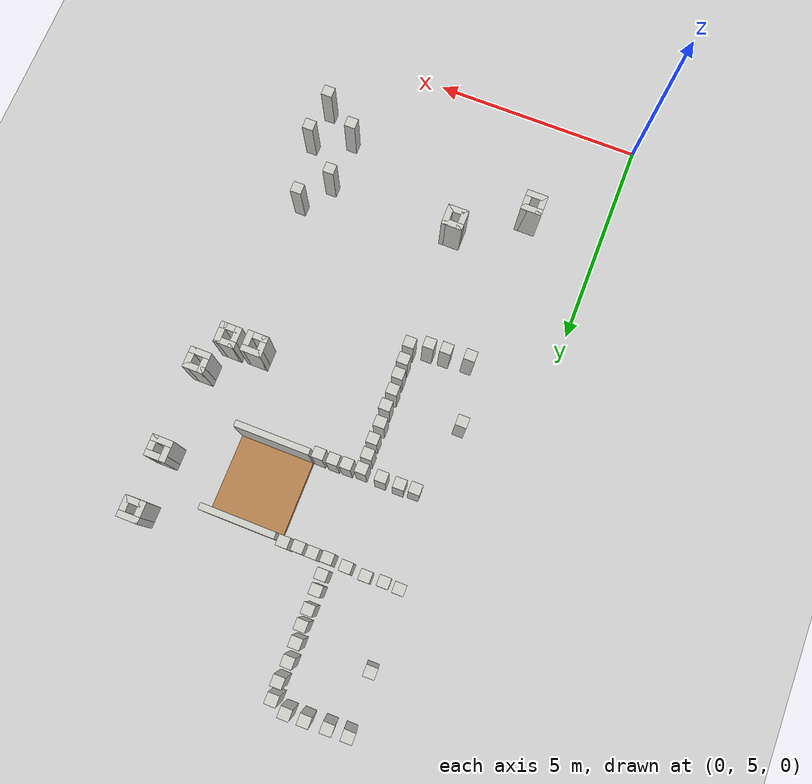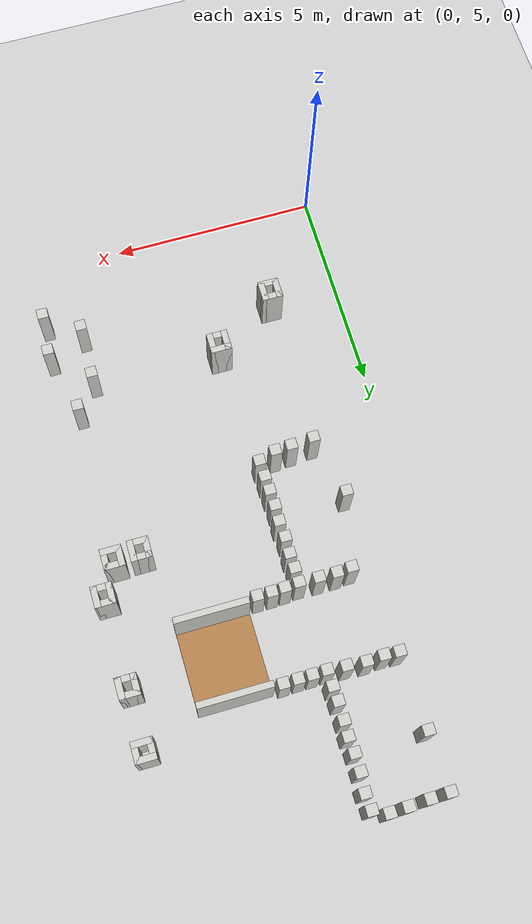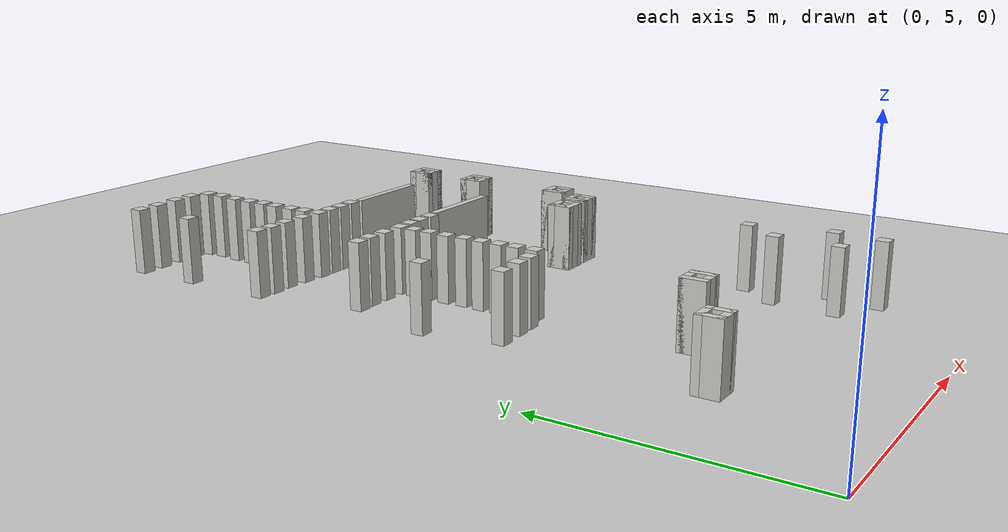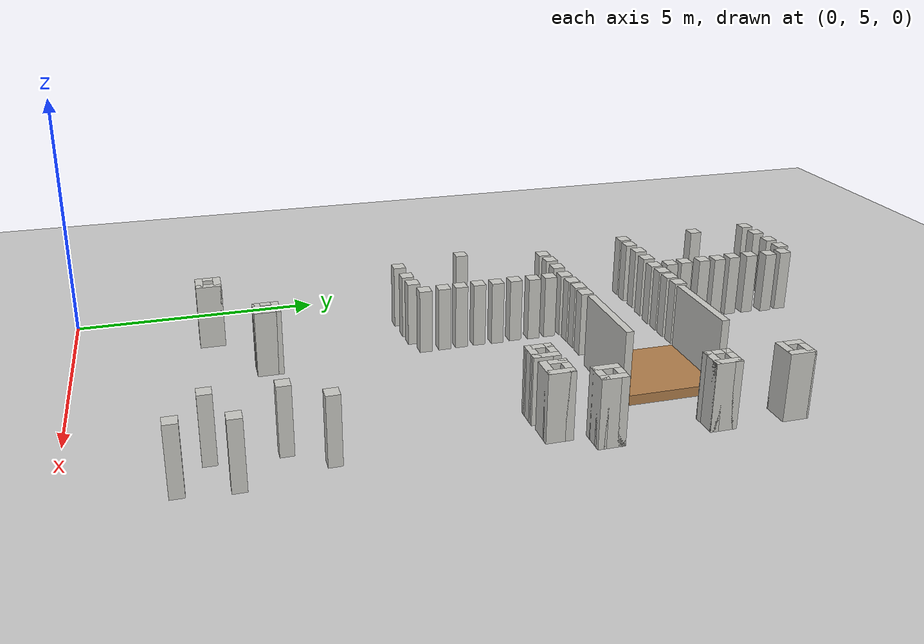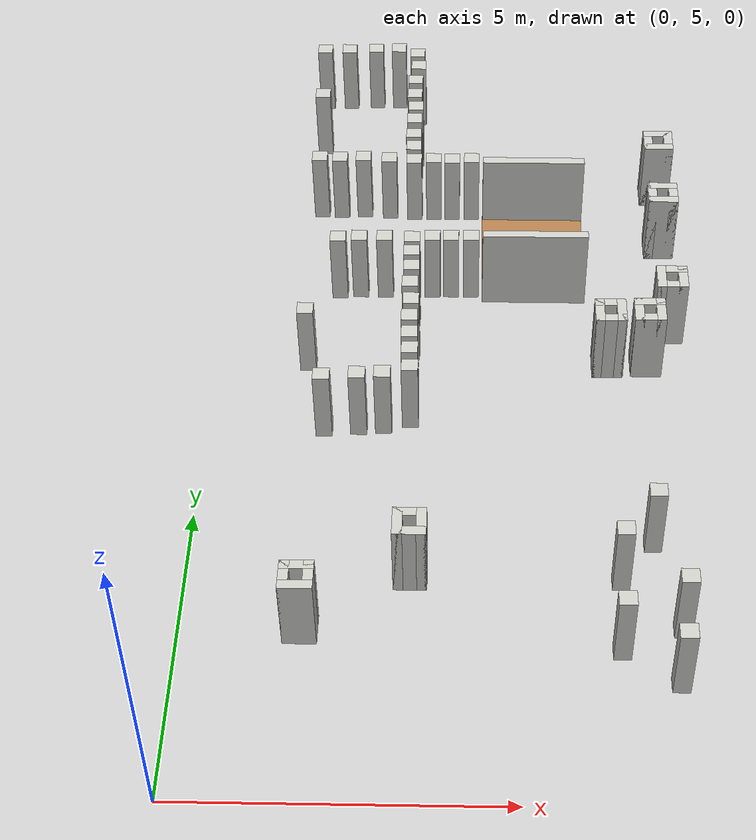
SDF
<sdf version="1.6">
 <world name="default">
  <model name="ground_plane">
   <static>1</static>
   <link name="link">
    <collision name="collision">
     <geometry><plane><normal>0 0 1</normal><size>100 100</size></plane></geometry>
     <surface><friction><ode><mu>100</mu><mu2>50</mu2></ode></friction></surface>
    </collision>
    <visual name="visual">
     <cast_shadows>0</cast_shadows>
     <geometry><plane><normal>0 0 1</normal><size>100 100</size></plane></geometry>
     <material>
      <script><uri>file://media/materials/scripts/gazebo.material</uri><name>Gazebo/Grey</name></script>
     </material>
    </visual>
   </link>
  </model>
  <model name="nerve_straight_clone_clone_0">
   <pose>5.28572 15.8348 0 0 0 -1.5708</pose>
   <link name="Wall_0">
    <collision name="Wall_0_Collision">
     <geometry><box><size>1.76 1.75 0.2</size></box></geometry>
     <pose>0 0 0.1 0 -0 0</pose>
    </collision>
    <visual name="Wall_0_Visual">
     <pose>0 0 0.1 0 -0 0</pose>
     <geometry><box><size>1.76 1.75 0.2</size></box></geometry>
     <material>
      <script><uri>file://media/materials/scripts/gazebo.material</uri><name>Gazebo/Wood</name></script>
      <ambient>1 0.764706 0.305882 1</ambient>
     </material>
    </visual>
    <pose>0.005 -0.002 0 0 -0 3.14159</pose>
   </link>
   <link name="Wall_2">
    <collision name="Wall_2_Collision">
     <geometry><box><size>1.75 0.15 1.5</size></box></geometry>
     <pose>0 0 0.75 0 -0 0</pose>
    </collision>
    <visual name="Wall_2_Visual">
     <pose>0 0 0.75 0 -0 0</pose>
     <geometry><box><size>1.75 0.15 1.5</size></box></geometry>
     <material>
      <script><uri>file://media/materials/scripts/gazebo.material</uri><name>Gazebo/CeilingTiled</name></script>
      <ambient>1 0.764706 0.305882 1</ambient>
     </material>
    </visual>
    <pose>-0.955 0.002 0 0 0 -1.5708</pose>
   </link>
   <link name="Wall_4">
    <collision name="Wall_4_Collision">
     <geometry><box><size>1.75 0.15 1.5</size></box></geometry>
     <pose>0 0 0.75 0 -0 0</pose>
    </collision>
    <visual name="Wall_4_Visual">
     <pose>0 0 0.75 0 -0 0</pose>
     <geometry><box><size>1.75 0.15 1.5</size></box></geometry>
     <material>
      <script><uri>file://media/materials/scripts/gazebo.material</uri><name>Gazebo/CeilingTiled</name></script>
      <ambient>1 0.764706 0.305882 1</ambient>
     </material>
    </visual>
    <pose>0.955 0.002 0 0 0 -1.5708</pose>
   </link>
   <static>1</static>
  </model>
  <model name="nerve_obs_squarepillar_large_clone_1">
   <pose>1.81336 7.73315 0.2 0 -0 0</pose>
   <link name="Wall_31">
    <collision name="Wall_31_Collision">
     <geometry><box><size>0.5 0.15 1.3</size></box></geometry>
     <pose>0 0 0.65 0 -0 0</pose>
    </collision>
    <visual name="Wall_31_Visual">
     <pose>0 0 0.65 0 -0 0</pose>
     <geometry><box><size>0.5 0.15 1.3</size></box></geometry>
     <material>
      <script><uri>file://media/materials/scripts/gazebo.material</uri><name>Gazebo/CeilingTiled</name></script>
      <ambient>1 0.764706 0.305882 1</ambient>
     </material>
    </visual>
    <pose>-0.175 0 0 0 0 -1.5708</pose>
   </link>
   <link name="Wall_32">
    <collision name="Wall_32_Collision">
     <geometry><box><size>0.5 0.15 1.3</size></box></geometry>
     <pose>0 0 0.65 0 -0 0</pose>
    </collision>
    <visual name="Wall_32_Visual">
     <pose>0 0 0.65 0 -0 0</pose>
     <geometry><box><size>0.5 0.15 1.3</size></box></geometry>
     <material>
      <script><uri>file://media/materials/scripts/gazebo.material</uri><name>Gazebo/CeilingTiled</name></script>
      <ambient>1 0.764706 0.305882 1</ambient>
     </material>
    </visual>
    <pose>0 -0.175 0 0 -0 0</pose>
   </link>
   <link name="Wall_33">
    <collision name="Wall_33_Collision">
     <geometry><box><size>0.5 0.15 1.3</size></box></geometry>
     <pose>0 0 0.65 0 -0 0</pose>
    </collision>
    <visual name="Wall_33_Visual">
     <pose>0 0 0.65 0 -0 0</pose>
     <geometry><box><size>0.5 0.15 1.3</size></box></geometry>
     <material>
      <script><uri>file://media/materials/scripts/gazebo.material</uri><name>Gazebo/CeilingTiled</name></script>
      <ambient>1 0.764706 0.305882 1</ambient>
     </material>
    </visual>
    <pose>0.175 0 0 0 -0 1.5708</pose>
   </link>
   <link name="Wall_34">
    <collision name="Wall_34_Collision">
     <geometry><box><size>0.5 0.15 1.3</size></box></geometry>
     <pose>0 0 0.65 0 -0 0</pose>
    </collision>
    <visual name="Wall_34_Visual">
     <pose>0 0 0.65 0 -0 0</pose>
     <geometry><box><size>0.5 0.15 1.3</size></box></geometry>
     <material>
      <script><uri>file://media/materials/scripts/gazebo.material</uri><name>Gazebo/CeilingTiled</name></script>
      <ambient>1 0.764706 0.305882 1</ambient>
     </material>
    </visual>
    <pose>0 0.175 0 0 -0 3.14159</pose>
   </link>
   <static>1</static>
  </model>
  <model name="nerve_obs_squarepillar_large_clone_8">
   <pose>3.37105 8.71891 0.2 0 -0 0</pose>
   <link name="Wall_31">
    <collision name="Wall_31_Collision">
     <geometry><box><size>0.5 0.15 1.3</size></box></geometry>
     <pose>0 0 0.65 0 -0 0</pose>
    </collision>
    <visual name="Wall_31_Visual">
     <pose>0 0 0.65 0 -0 0</pose>
     <geometry><box><size>0.5 0.15 1.3</size></box></geometry>
     <material>
      <script><uri>file://media/materials/scripts/gazebo.material</uri><name>Gazebo/CeilingTiled</name></script>
      <ambient>1 0.764706 0.305882 1</ambient>
     </material>
    </visual>
    <pose>-0.175 0 0 0 0 -1.5708</pose>
   </link>
   <link name="Wall_32">
    <collision name="Wall_32_Collision">
     <geometry><box><size>0.5 0.15 1.3</size></box></geometry>
     <pose>0 0 0.65 0 -0 0</pose>
    </collision>
    <visual name="Wall_32_Visual">
     <pose>0 0 0.65 0 -0 0</pose>
     <geometry><box><size>0.5 0.15 1.3</size></box></geometry>
     <material>
      <script><uri>file://media/materials/scripts/gazebo.material</uri><name>Gazebo/CeilingTiled</name></script>
      <ambient>1 0.764706 0.305882 1</ambient>
     </material>
    </visual>
    <pose>0 -0.175 0 0 -0 0</pose>
   </link>
   <link name="Wall_33">
    <collision name="Wall_33_Collision">
     <geometry><box><size>0.5 0.15 1.3</size></box></geometry>
     <pose>0 0 0.65 0 -0 0</pose>
    </collision>
    <visual name="Wall_33_Visual">
     <pose>0 0 0.65 0 -0 0</pose>
     <geometry><box><size>0.5 0.15 1.3</size></box></geometry>
     <material>
      <script><uri>file://media/materials/scripts/gazebo.material</uri><name>Gazebo/CeilingTiled</name></script>
      <ambient>1 0.764706 0.305882 1</ambient>
     </material>
    </visual>
    <pose>0.175 0 0 0 -0 1.5708</pose>
   </link>
   <link name="Wall_34">
    <collision name="Wall_34_Collision">
     <geometry><box><size>0.5 0.15 1.3</size></box></geometry>
     <pose>0 0 0.65 0 -0 0</pose>
    </collision>
    <visual name="Wall_34_Visual">
     <pose>0 0 0.65 0 -0 0</pose>
     <geometry><box><size>0.5 0.15 1.3</size></box></geometry>
     <material>
      <script><uri>file://media/materials/scripts/gazebo.material</uri><name>Gazebo/CeilingTiled</name></script>
      <ambient>1 0.764706 0.305882 1</ambient>
     </material>
    </visual>
    <pose>0 0.175 0 0 -0 3.14159</pose>
   </link>
   <static>1</static>
  </model>
  <model name="nerve_obs_squarepillar_small_clone_29">
   <pose>6.47345 8.64189 0.2 0 -0 0</pose>
   <link name="Wall_40">
    <collision name="Wall_40_Collision">
     <geometry><box><size>0.26 0.25 1.3</size></box></geometry>
     <pose>0 0 0.65 0 -0 0</pose>
    </collision>
    <visual name="Wall_40_Visual">
     <pose>0 0 0.65 0 -0 0</pose>
     <geometry><box><size>0.26 0.25 1.3</size></box></geometry>
     <material>
      <script><uri>file://media/materials/scripts/gazebo.material</uri><name>Gazebo/CeilingTiled</name></script>
      <ambient>1 0.764706 0.305882 1</ambient>
     </material>
    </visual>
   </link>
   <static>1</static>
  </model>
  <model name="nerve_obs_squarepillar_small_clone_30">
   <pose>6.43463 7.40107 0.2 0 -0 0</pose>
   <link name="Wall_40">
    <collision name="Wall_40_Collision">
     <geometry><box><size>0.26 0.25 1.3</size></box></geometry>
     <pose>0 0 0.65 0 -0 0</pose>
    </collision>
    <visual name="Wall_40_Visual">
     <pose>0 0 0.65 0 -0 0</pose>
     <geometry><box><size>0.26 0.25 1.3</size></box></geometry>
     <material>
      <script><uri>file://media/materials/scripts/gazebo.material</uri><name>Gazebo/CeilingTiled</name></script>
      <ambient>1 0.764706 0.305882 1</ambient>
     </material>
    </visual>
   </link>
   <static>1</static>
  </model>
  <model name="nerve_obs_squarepillar_small_clone_32">
   <pose>7.32725 7.7999 0.2 0 -0 0</pose>
   <link name="Wall_40">
    <collision name="Wall_40_Collision">
     <geometry><box><size>0.26 0.25 1.3</size></box></geometry>
     <pose>0 0 0.65 0 -0 0</pose>
    </collision>
    <visual name="Wall_40_Visual">
     <pose>0 0 0.65 0 -0 0</pose>
     <geometry><box><size>0.26 0.25 1.3</size></box></geometry>
     <material>
      <script><uri>file://media/materials/scripts/gazebo.material</uri><name>Gazebo/CeilingTiled</name></script>
      <ambient>1 0.764706 0.305882 1</ambient>
     </material>
    </visual>
   </link>
   <static>1</static>
  </model>
  <model name="nerve_obs_squarepillar_small_clone_33">
   <pose>7.2365 6.85635 0.2 0 -0 0</pose>
   <link name="Wall_40">
    <collision name="Wall_40_Collision">
     <geometry><box><size>0.26 0.25 1.3</size></box></geometry>
     <pose>0 0 0.65 0 -0 0</pose>
    </collision>
    <visual name="Wall_40_Visual">
     <pose>0 0 0.65 0 -0 0</pose>
     <geometry><box><size>0.26 0.25 1.3</size></box></geometry>
     <material>
      <script><uri>file://media/materials/scripts/gazebo.material</uri><name>Gazebo/CeilingTiled</name></script>
      <ambient>1 0.764706 0.305882 1</ambient>
     </material>
    </visual>
   </link>
   <static>1</static>
  </model>
  <model name="nerve_obs_squarepillar_small_clone_42">
   <pose>6.98271 9.35661 0.2 0 -0 0</pose>
   <link name="Wall_40">
    <collision name="Wall_40_Collision">
     <geometry><box><size>0.26 0.25 1.3</size></box></geometry>
     <pose>0 0 0.65 0 -0 0</pose>
    </collision>
    <visual name="Wall_40_Visual">
     <pose>0 0 0.65 0 -0 0</pose>
     <geometry><box><size>0.26 0.25 1.3</size></box></geometry>
     <material>
      <script><uri>file://media/materials/scripts/gazebo.material</uri><name>Gazebo/CeilingTiled</name></script>
      <ambient>1 0.764706 0.305882 1</ambient>
     </material>
    </visual>
   </link>
   <static>1</static>
  </model>
  <model name="nerve_obs_squarepillar_small_clone_41_clone_5">
   <pose>4.21298 16.8399 0.2 0 -0 0</pose>
   <link name="Wall_40">
    <collision name="Wall_40_Collision">
     <geometry><box><size>0.26 0.25 1.3</size></box></geometry>
     <pose>0 0 0.65 0 -0 0</pose>
    </collision>
    <visual name="Wall_40_Visual">
     <pose>0 0 0.65 0 -0 0</pose>
     <geometry><box><size>0.26 0.25 1.3</size></box></geometry>
     <material>
      <script><uri>file://media/materials/scripts/gazebo.material</uri><name>Gazebo/CeilingTiled</name></script>
      <ambient>1 0.764706 0.305882 1</ambient>
     </material>
    </visual>
   </link>
   <static>1</static>
  </model>
  <model name="nerve_obs_squarepillar_small_clone_41_clone_6">
   <pose>3.87636 16.8271 0.2 0 -0 0</pose>
   <link name="Wall_40">
    <collision name="Wall_40_Collision">
     <geometry><box><size>0.26 0.25 1.3</size></box></geometry>
     <pose>0 0 0.65 0 -0 0</pose>
    </collision>
    <visual name="Wall_40_Visual">
     <pose>0 0 0.65 0 -0 0</pose>
     <geometry><box><size>0.26 0.25 1.3</size></box></geometry>
     <material>
      <script><uri>file://media/materials/scripts/gazebo.material</uri><name>Gazebo/CeilingTiled</name></script>
      <ambient>1 0.764706 0.305882 1</ambient>
     </material>
    </visual>
   </link>
   <static>1</static>
  </model>
  <model name="nerve_obs_squarepillar_small_clone_41_clone_7">
   <pose>3.55381 16.8282 0.2 0 -0 0</pose>
   <link name="Wall_40">
    <collision name="Wall_40_Collision">
     <geometry><box><size>0.26 0.25 1.3</size></box></geometry>
     <pose>0 0 0.65 0 -0 0</pose>
    </collision>
    <visual name="Wall_40_Visual">
     <pose>0 0 0.65 0 -0 0</pose>
     <geometry><box><size>0.26 0.25 1.3</size></box></geometry>
     <material>
      <script><uri>file://media/materials/scripts/gazebo.material</uri><name>Gazebo/CeilingTiled</name></script>
      <ambient>1 0.764706 0.305882 1</ambient>
     </material>
    </visual>
   </link>
   <static>1</static>
  </model>
  <model name="nerve_obs_squarepillar_small_clone_41_clone_8">
   <pose>4.21962 14.8345 0.2 0 -0 0</pose>
   <link name="Wall_40">
    <collision name="Wall_40_Collision">
     <geometry><box><size>0.26 0.25 1.3</size></box></geometry>
     <pose>0 0 0.65 0 -0 0</pose>
    </collision>
    <visual name="Wall_40_Visual">
     <pose>0 0 0.65 0 -0 0</pose>
     <geometry><box><size>0.26 0.25 1.3</size></box></geometry>
     <material>
      <script><uri>file://media/materials/scripts/gazebo.material</uri><name>Gazebo/CeilingTiled</name></script>
      <ambient>1 0.764706 0.305882 1</ambient>
     </material>
    </visual>
   </link>
   <static>1</static>
  </model>
  <model name="nerve_obs_squarepillar_small_clone_41_clone_9">
   <pose>3.88308 14.8356 0.2 0 -0 0</pose>
   <link name="Wall_40">
    <collision name="Wall_40_Collision">
     <geometry><box><size>0.26 0.25 1.3</size></box></geometry>
     <pose>0 0 0.65 0 -0 0</pose>
    </collision>
    <visual name="Wall_40_Visual">
     <pose>0 0 0.65 0 -0 0</pose>
     <geometry><box><size>0.26 0.25 1.3</size></box></geometry>
     <material>
      <script><uri>file://media/materials/scripts/gazebo.material</uri><name>Gazebo/CeilingTiled</name></script>
      <ambient>1 0.764706 0.305882 1</ambient>
     </material>
    </visual>
   </link>
   <static>1</static>
  </model>
  <model name="nerve_obs_squarepillar_small_clone_41_clone_10">
   <pose>3.57455 14.8227 0.2 0 -0 0</pose>
   <link name="Wall_40">
    <collision name="Wall_40_Collision">
     <geometry><box><size>0.26 0.25 1.3</size></box></geometry>
     <pose>0 0 0.65 0 -0 0</pose>
    </collision>
    <visual name="Wall_40_Visual">
     <pose>0 0 0.65 0 -0 0</pose>
     <geometry><box><size>0.26 0.25 1.3</size></box></geometry>
     <material>
      <script><uri>file://media/materials/scripts/gazebo.material</uri><name>Gazebo/CeilingTiled</name></script>
      <ambient>1 0.764706 0.305882 1</ambient>
     </material>
    </visual>
   </link>
   <static>1</static>
  </model>
  <model name="nerve_obs_squarepillar_small_clone_41_clone_11">
   <pose>3.2169 16.8154 0.2 0 -0 0</pose>
   <link name="Wall_40">
    <collision name="Wall_40_Collision">
     <geometry><box><size>0.26 0.25 1.3</size></box></geometry>
     <pose>0 0 0.65 0 -0 0</pose>
    </collision>
    <visual name="Wall_40_Visual">
     <pose>0 0 0.65 0 -0 0</pose>
     <geometry><box><size>0.26 0.25 1.3</size></box></geometry>
     <material>
      <script><uri>file://media/materials/scripts/gazebo.material</uri><name>Gazebo/CeilingTiled</name></script>
      <ambient>1 0.764706 0.305882 1</ambient>
     </material>
    </visual>
   </link>
   <static>1</static>
  </model>
  <model name="nerve_obs_squarepillar_small_clone_41_clone_12">
   <pose>3.20426 17.1802 0.2 0 -0 0</pose>
   <link name="Wall_40">
    <collision name="Wall_40_Collision">
     <geometry><box><size>0.26 0.25 1.3</size></box></geometry>
     <pose>0 0 0.65 0 -0 0</pose>
    </collision>
    <visual name="Wall_40_Visual">
     <pose>0 0 0.65 0 -0 0</pose>
     <geometry><box><size>0.26 0.25 1.3</size></box></geometry>
     <material>
      <script><uri>file://media/materials/scripts/gazebo.material</uri><name>Gazebo/CeilingTiled</name></script>
      <ambient>1 0.764706 0.305882 1</ambient>
     </material>
    </visual>
   </link>
   <static>1</static>
  </model>
  <model name="nerve_obs_squarepillar_small_clone_41_clone_13">
   <pose>3.19145 17.5167 0.2 0 -0 0</pose>
   <link name="Wall_40">
    <collision name="Wall_40_Collision">
     <geometry><box><size>0.26 0.25 1.3</size></box></geometry>
     <pose>0 0 0.65 0 -0 0</pose>
    </collision>
    <visual name="Wall_40_Visual">
     <pose>0 0 0.65 0 -0 0</pose>
     <geometry><box><size>0.26 0.25 1.3</size></box></geometry>
     <material>
      <script><uri>file://media/materials/scripts/gazebo.material</uri><name>Gazebo/CeilingTiled</name></script>
      <ambient>1 0.764706 0.305882 1</ambient>
     </material>
    </visual>
   </link>
   <static>1</static>
  </model>
  <model name="nerve_obs_squarepillar_small_clone_41_clone_14">
   <pose>3.19295 17.9375 0.2 0 -0 0</pose>
   <link name="Wall_40">
    <collision name="Wall_40_Collision">
     <geometry><box><size>0.26 0.25 1.3</size></box></geometry>
     <pose>0 0 0.65 0 -0 0</pose>
    </collision>
    <visual name="Wall_40_Visual">
     <pose>0 0 0.65 0 -0 0</pose>
     <geometry><box><size>0.26 0.25 1.3</size></box></geometry>
     <material>
      <script><uri>file://media/materials/scripts/gazebo.material</uri><name>Gazebo/CeilingTiled</name></script>
      <ambient>1 0.764706 0.305882 1</ambient>
     </material>
    </visual>
   </link>
   <static>1</static>
  </model>
  <model name="nerve_obs_squarepillar_small_clone_41_clone_15">
   <pose>3.20825 18.2881 0.2 0 -0 0</pose>
   <link name="Wall_40">
    <collision name="Wall_40_Collision">
     <geometry><box><size>0.26 0.25 1.3</size></box></geometry>
     <pose>0 0 0.65 0 -0 0</pose>
    </collision>
    <visual name="Wall_40_Visual">
     <pose>0 0 0.65 0 -0 0</pose>
     <geometry><box><size>0.26 0.25 1.3</size></box></geometry>
     <material>
      <script><uri>file://media/materials/scripts/gazebo.material</uri><name>Gazebo/CeilingTiled</name></script>
      <ambient>1 0.764706 0.305882 1</ambient>
     </material>
    </visual>
   </link>
   <static>1</static>
  </model>
  <model name="nerve_obs_squarepillar_small_clone_41_clone_16">
   <pose>3.18151 18.653 0.2 0 -0 0</pose>
   <link name="Wall_40">
    <collision name="Wall_40_Collision">
     <geometry><box><size>0.26 0.25 1.3</size></box></geometry>
     <pose>0 0 0.65 0 -0 0</pose>
    </collision>
    <visual name="Wall_40_Visual">
     <pose>0 0 0.65 0 -0 0</pose>
     <geometry><box><size>0.26 0.25 1.3</size></box></geometry>
     <material>
      <script><uri>file://media/materials/scripts/gazebo.material</uri><name>Gazebo/CeilingTiled</name></script>
      <ambient>1 0.764706 0.305882 1</ambient>
     </material>
    </visual>
   </link>
   <static>1</static>
  </model>
  <model name="nerve_obs_squarepillar_small_clone_41_clone_17">
   <pose>3.18303 19.0601 0.2 0 -0 0</pose>
   <link name="Wall_40">
    <collision name="Wall_40_Collision">
     <geometry><box><size>0.26 0.25 1.3</size></box></geometry>
     <pose>0 0 0.65 0 -0 0</pose>
    </collision>
    <visual name="Wall_40_Visual">
     <pose>0 0 0.65 0 -0 0</pose>
     <geometry><box><size>0.26 0.25 1.3</size></box></geometry>
     <material>
      <script><uri>file://media/materials/scripts/gazebo.material</uri><name>Gazebo/CeilingTiled</name></script>
      <ambient>1 0.764706 0.305882 1</ambient>
     </material>
    </visual>
   </link>
   <static>1</static>
  </model>
  <model name="nerve_obs_squarepillar_small_clone_41_clone_18">
   <pose>3.2266 19.4949 0.2 0 -0 0</pose>
   <link name="Wall_40">
    <collision name="Wall_40_Collision">
     <geometry><box><size>0.26 0.25 1.3</size></box></geometry>
     <pose>0 0 0.65 0 -0 0</pose>
    </collision>
    <visual name="Wall_40_Visual">
     <pose>0 0 0.65 0 -0 0</pose>
     <geometry><box><size>0.26 0.25 1.3</size></box></geometry>
     <material>
      <script><uri>file://media/materials/scripts/gazebo.material</uri><name>Gazebo/CeilingTiled</name></script>
      <ambient>1 0.764706 0.305882 1</ambient>
     </material>
    </visual>
   </link>
   <static>1</static>
  </model>
  <model name="nerve_obs_squarepillar_small_clone_41_clone_19">
   <pose>3.19993 19.8596 0.2 0 -0 0</pose>
   <link name="Wall_40">
    <collision name="Wall_40_Collision">
     <geometry><box><size>0.26 0.25 1.3</size></box></geometry>
     <pose>0 0 0.65 0 -0 0</pose>
    </collision>
    <visual name="Wall_40_Visual">
     <pose>0 0 0.65 0 -0 0</pose>
     <geometry><box><size>0.26 0.25 1.3</size></box></geometry>
     <material>
      <script><uri>file://media/materials/scripts/gazebo.material</uri><name>Gazebo/CeilingTiled</name></script>
      <ambient>1 0.764706 0.305882 1</ambient>
     </material>
    </visual>
   </link>
   <static>1</static>
  </model>
  <model name="nerve_obs_squarepillar_small_clone_41_clone_39">
   <pose>1.48907 19.9638 0.2 0 -0 0</pose>
   <link name="Wall_40">
    <collision name="Wall_40_Collision">
     <geometry><box><size>0.26 0.25 1.3</size></box></geometry>
     <pose>0 0 0.65 0 -0 0</pose>
    </collision>
    <visual name="Wall_40_Visual">
     <pose>0 0 0.65 0 -0 0</pose>
     <geometry><box><size>0.26 0.25 1.3</size></box></geometry>
     <material>
      <script><uri>file://media/materials/scripts/gazebo.material</uri><name>Gazebo/CeilingTiled</name></script>
      <ambient>1 0.764706 0.305882 1</ambient>
     </material>
    </visual>
   </link>
   <static>1</static>
  </model>
  <model name="nerve_obs_squarepillar_small_clone_41_clone_40">
   <pose>1.93796 19.976 0.2 0 -0 0</pose>
   <link name="Wall_40">
    <collision name="Wall_40_Collision">
     <geometry><box><size>0.26 0.25 1.3</size></box></geometry>
     <pose>0 0 0.65 0 -0 0</pose>
    </collision>
    <visual name="Wall_40_Visual">
     <pose>0 0 0.65 0 -0 0</pose>
     <geometry><box><size>0.26 0.25 1.3</size></box></geometry>
     <material>
      <script><uri>file://media/materials/scripts/gazebo.material</uri><name>Gazebo/CeilingTiled</name></script>
      <ambient>1 0.764706 0.305882 1</ambient>
     </material>
    </visual>
   </link>
   <static>1</static>
  </model>
  <model name="nerve_obs_squarepillar_small_clone_41_clone_41">
   <pose>2.42897 20.0022 0.2 0 -0 0</pose>
   <link name="Wall_40">
    <collision name="Wall_40_Collision">
     <geometry><box><size>0.26 0.25 1.3</size></box></geometry>
     <pose>0 0 0.65 0 -0 0</pose>
    </collision>
    <visual name="Wall_40_Visual">
     <pose>0 0 0.65 0 -0 0</pose>
     <geometry><box><size>0.26 0.25 1.3</size></box></geometry>
     <material>
      <script><uri>file://media/materials/scripts/gazebo.material</uri><name>Gazebo/CeilingTiled</name></script>
      <ambient>1 0.764706 0.305882 1</ambient>
     </material>
    </visual>
   </link>
   <static>1</static>
  </model>
  <model name="nerve_obs_squarepillar_small_clone_41_clone_42">
   <pose>2.85034 20.0152 0.2 0 -0 0</pose>
   <link name="Wall_40">
    <collision name="Wall_40_Collision">
     <geometry><box><size>0.26 0.25 1.3</size></box></geometry>
     <pose>0 0 0.65 0 -0 0</pose>
    </collision>
    <visual name="Wall_40_Visual">
     <pose>0 0 0.65 0 -0 0</pose>
     <geometry><box><size>0.26 0.25 1.3</size></box></geometry>
     <material>
      <script><uri>file://media/materials/scripts/gazebo.material</uri><name>Gazebo/CeilingTiled</name></script>
      <ambient>1 0.764706 0.305882 1</ambient>
     </material>
    </visual>
   </link>
   <static>1</static>
  </model>
  <model name="nerve_obs_squarepillar_small_clone_41_clone_43">
   <pose>3.23818 14.796 0.2 0 -0 0</pose>
   <link name="Wall_40">
    <collision name="Wall_40_Collision">
     <geometry><box><size>0.26 0.25 1.3</size></box></geometry>
     <pose>0 0 0.65 0 -0 0</pose>
    </collision>
    <visual name="Wall_40_Visual">
     <pose>0 0 0.65 0 -0 0</pose>
     <geometry><box><size>0.26 0.25 1.3</size></box></geometry>
     <material>
      <script><uri>file://media/materials/scripts/gazebo.material</uri><name>Gazebo/CeilingTiled</name></script>
      <ambient>1 0.764706 0.305882 1</ambient>
     </material>
    </visual>
   </link>
   <static>1</static>
  </model>
  <model name="nerve_obs_squarepillar_small_clone_41_clone_44">
   <pose>3.23696 14.4594 0.2 0 -0 0</pose>
   <link name="Wall_40">
    <collision name="Wall_40_Collision">
     <geometry><box><size>0.26 0.25 1.3</size></box></geometry>
     <pose>0 0 0.65 0 -0 0</pose>
    </collision>
    <visual name="Wall_40_Visual">
     <pose>0 0 0.65 0 -0 0</pose>
     <geometry><box><size>0.26 0.25 1.3</size></box></geometry>
     <material>
      <script><uri>file://media/materials/scripts/gazebo.material</uri><name>Gazebo/CeilingTiled</name></script>
      <ambient>1 0.764706 0.305882 1</ambient>
     </material>
    </visual>
   </link>
   <static>1</static>
  </model>
  <model name="nerve_obs_squarepillar_small_clone_41_clone_45">
   <pose>3.24972 14.1088 0.2 0 -0 0</pose>
   <link name="Wall_40">
    <collision name="Wall_40_Collision">
     <geometry><box><size>0.26 0.25 1.3</size></box></geometry>
     <pose>0 0 0.65 0 -0 0</pose>
    </collision>
    <visual name="Wall_40_Visual">
     <pose>0 0 0.65 0 -0 0</pose>
     <geometry><box><size>0.26 0.25 1.3</size></box></geometry>
     <material>
      <script><uri>file://media/materials/scripts/gazebo.material</uri><name>Gazebo/CeilingTiled</name></script>
      <ambient>1 0.764706 0.305882 1</ambient>
     </material>
    </visual>
   </link>
   <static>1</static>
  </model>
  <model name="nerve_obs_squarepillar_small_clone_41_clone_46">
   <pose>3.23422 13.7161 0.2 0 -0 0</pose>
   <link name="Wall_40">
    <collision name="Wall_40_Collision">
     <geometry><box><size>0.26 0.25 1.3</size></box></geometry>
     <pose>0 0 0.65 0 -0 0</pose>
    </collision>
    <visual name="Wall_40_Visual">
     <pose>0 0 0.65 0 -0 0</pose>
     <geometry><box><size>0.26 0.25 1.3</size></box></geometry>
     <material>
      <script><uri>file://media/materials/scripts/gazebo.material</uri><name>Gazebo/CeilingTiled</name></script>
      <ambient>1 0.764706 0.305882 1</ambient>
     </material>
    </visual>
   </link>
   <static>1</static>
  </model>
  <model name="nerve_obs_squarepillar_small_clone_41_clone_47">
   <pose>3.26091 13.3236 0.2 0 -0 0</pose>
   <link name="Wall_40">
    <collision name="Wall_40_Collision">
     <geometry><box><size>0.26 0.25 1.3</size></box></geometry>
     <pose>0 0 0.65 0 -0 0</pose>
    </collision>
    <visual name="Wall_40_Visual">
     <pose>0 0 0.65 0 -0 0</pose>
     <geometry><box><size>0.26 0.25 1.3</size></box></geometry>
     <material>
      <script><uri>file://media/materials/scripts/gazebo.material</uri><name>Gazebo/CeilingTiled</name></script>
      <ambient>1 0.764706 0.305882 1</ambient>
     </material>
    </visual>
   </link>
   <static>1</static>
  </model>
  <model name="nerve_obs_squarepillar_small_clone_41_clone_48">
   <pose>3.24547 12.9451 0.2 0 -0 0</pose>
   <link name="Wall_40">
    <collision name="Wall_40_Collision">
     <geometry><box><size>0.26 0.25 1.3</size></box></geometry>
     <pose>0 0 0.65 0 -0 0</pose>
    </collision>
    <visual name="Wall_40_Visual">
     <pose>0 0 0.65 0 -0 0</pose>
     <geometry><box><size>0.26 0.25 1.3</size></box></geometry>
     <material>
      <script><uri>file://media/materials/scripts/gazebo.material</uri><name>Gazebo/CeilingTiled</name></script>
      <ambient>1 0.764706 0.305882 1</ambient>
     </material>
    </visual>
   </link>
   <static>1</static>
  </model>
  <model name="nerve_obs_squarepillar_small_clone_41_clone_49">
   <pose>3.25813 12.5666 0.2 0 -0 0</pose>
   <link name="Wall_40">
    <collision name="Wall_40_Collision">
     <geometry><box><size>0.26 0.25 1.3</size></box></geometry>
     <pose>0 0 0.65 0 -0 0</pose>
    </collision>
    <visual name="Wall_40_Visual">
     <pose>0 0 0.65 0 -0 0</pose>
     <geometry><box><size>0.26 0.25 1.3</size></box></geometry>
     <material>
      <script><uri>file://media/materials/scripts/gazebo.material</uri><name>Gazebo/CeilingTiled</name></script>
      <ambient>1 0.764706 0.305882 1</ambient>
     </material>
    </visual>
   </link>
   <static>1</static>
  </model>
  <model name="nerve_obs_squarepillar_small_clone_41_clone_50">
   <pose>3.27088 12.216 0.2 0 -0 0</pose>
   <link name="Wall_40">
    <collision name="Wall_40_Collision">
     <geometry><box><size>0.26 0.25 1.3</size></box></geometry>
     <pose>0 0 0.65 0 -0 0</pose>
    </collision>
    <visual name="Wall_40_Visual">
     <pose>0 0 0.65 0 -0 0</pose>
     <geometry><box><size>0.26 0.25 1.3</size></box></geometry>
     <material>
      <script><uri>file://media/materials/scripts/gazebo.material</uri><name>Gazebo/CeilingTiled</name></script>
      <ambient>1 0.764706 0.305882 1</ambient>
     </material>
    </visual>
   </link>
   <static>1</static>
  </model>
  <model name="nerve_obs_squarepillar_small_clone_41_clone_51">
   <pose>3.28349 11.8235 0.2 0 -0 0</pose>
   <link name="Wall_40">
    <collision name="Wall_40_Collision">
     <geometry><box><size>0.26 0.25 1.3</size></box></geometry>
     <pose>0 0 0.65 0 -0 0</pose>
    </collision>
    <visual name="Wall_40_Visual">
     <pose>0 0 0.65 0 -0 0</pose>
     <geometry><box><size>0.26 0.25 1.3</size></box></geometry>
     <material>
      <script><uri>file://media/materials/scripts/gazebo.material</uri><name>Gazebo/CeilingTiled</name></script>
      <ambient>1 0.764706 0.305882 1</ambient>
     </material>
    </visual>
   </link>
   <static>1</static>
  </model>
  <model name="nerve_obs_squarepillar_small_clone_41_clone_71">
   <pose>1.92318 11.6183 0.2 0 -0 0</pose>
   <link name="Wall_40">
    <collision name="Wall_40_Collision">
     <geometry><box><size>0.26 0.25 1.3</size></box></geometry>
     <pose>0 0 0.65 0 -0 0</pose>
    </collision>
    <visual name="Wall_40_Visual">
     <pose>0 0 0.65 0 -0 0</pose>
     <geometry><box><size>0.26 0.25 1.3</size></box></geometry>
     <material>
      <script><uri>file://media/materials/scripts/gazebo.material</uri><name>Gazebo/CeilingTiled</name></script>
      <ambient>1 0.764706 0.305882 1</ambient>
     </material>
    </visual>
   </link>
   <static>1</static>
  </model>
  <model name="nerve_obs_squarepillar_small_clone_41_clone_72">
   <pose>2.47006 11.6585 0.2 0 -0 0</pose>
   <link name="Wall_40">
    <collision name="Wall_40_Collision">
     <geometry><box><size>0.26 0.25 1.3</size></box></geometry>
     <pose>0 0 0.65 0 -0 0</pose>
    </collision>
    <visual name="Wall_40_Visual">
     <pose>0 0 0.65 0 -0 0</pose>
     <geometry><box><size>0.26 0.25 1.3</size></box></geometry>
     <material>
      <script><uri>file://media/materials/scripts/gazebo.material</uri><name>Gazebo/CeilingTiled</name></script>
      <ambient>1 0.764706 0.305882 1</ambient>
     </material>
    </visual>
   </link>
   <static>1</static>
  </model>
  <model name="nerve_obs_squarepillar_small_clone_41_clone_73">
   <pose>2.86274 11.6851 0.2 0 -0 0</pose>
   <link name="Wall_40">
    <collision name="Wall_40_Collision">
     <geometry><box><size>0.26 0.25 1.3</size></box></geometry>
     <pose>0 0 0.65 0 -0 0</pose>
    </collision>
    <visual name="Wall_40_Visual">
     <pose>0 0 0.65 0 -0 0</pose>
     <geometry><box><size>0.26 0.25 1.3</size></box></geometry>
     <material>
      <script><uri>file://media/materials/scripts/gazebo.material</uri><name>Gazebo/CeilingTiled</name></script>
      <ambient>1 0.764706 0.305882 1</ambient>
     </material>
    </visual>
   </link>
   <static>1</static>
  </model>
  <model name="nerve_obs_squarepillar_small_clone_41_clone_74">
   <pose>2.78335 16.8454 0.2 0 -0 0</pose>
   <link name="Wall_40">
    <collision name="Wall_40_Collision">
     <geometry><box><size>0.26 0.25 1.3</size></box></geometry>
     <pose>0 0 0.65 0 -0 0</pose>
    </collision>
    <visual name="Wall_40_Visual">
     <pose>0 0 0.65 0 -0 0</pose>
     <geometry><box><size>0.26 0.25 1.3</size></box></geometry>
     <material>
      <script><uri>file://media/materials/scripts/gazebo.material</uri><name>Gazebo/CeilingTiled</name></script>
      <ambient>1 0.764706 0.305882 1</ambient>
     </material>
    </visual>
   </link>
   <static>1</static>
  </model>
  <model name="nerve_obs_squarepillar_small_clone_41_clone_75">
   <pose>2.33469 16.8747 0.2 0 -0 0</pose>
   <link name="Wall_40">
    <collision name="Wall_40_Collision">
     <geometry><box><size>0.26 0.25 1.3</size></box></geometry>
     <pose>0 0 0.65 0 -0 0</pose>
    </collision>
    <visual name="Wall_40_Visual">
     <pose>0 0 0.65 0 -0 0</pose>
     <geometry><box><size>0.26 0.25 1.3</size></box></geometry>
     <material>
      <script><uri>file://media/materials/scripts/gazebo.material</uri><name>Gazebo/CeilingTiled</name></script>
      <ambient>1 0.764706 0.305882 1</ambient>
     </material>
    </visual>
   </link>
   <static>1</static>
  </model>
  <model name="nerve_obs_squarepillar_small_clone_41_clone_76">
   <pose>1.92792 16.8481 0.2 0 -0 0</pose>
   <link name="Wall_40">
    <collision name="Wall_40_Collision">
     <geometry><box><size>0.26 0.25 1.3</size></box></geometry>
     <pose>0 0 0.65 0 -0 0</pose>
    </collision>
    <visual name="Wall_40_Visual">
     <pose>0 0 0.65 0 -0 0</pose>
     <geometry><box><size>0.26 0.25 1.3</size></box></geometry>
     <material>
      <script><uri>file://media/materials/scripts/gazebo.material</uri><name>Gazebo/CeilingTiled</name></script>
      <ambient>1 0.764706 0.305882 1</ambient>
     </material>
    </visual>
   </link>
   <static>1</static>
  </model>
  <model name="nerve_obs_squarepillar_small_clone_41_clone_77">
   <pose>1.57738 16.8634 0.2 0 -0 0</pose>
   <link name="Wall_40">
    <collision name="Wall_40_Collision">
     <geometry><box><size>0.26 0.25 1.3</size></box></geometry>
     <pose>0 0 0.65 0 -0 0</pose>
    </collision>
    <visual name="Wall_40_Visual">
     <pose>0 0 0.65 0 -0 0</pose>
     <geometry><box><size>0.26 0.25 1.3</size></box></geometry>
     <material>
      <script><uri>file://media/materials/scripts/gazebo.material</uri><name>Gazebo/CeilingTiled</name></script>
      <ambient>1 0.764706 0.305882 1</ambient>
     </material>
    </visual>
   </link>
   <static>1</static>
  </model>
  <model name="nerve_obs_squarepillar_small_clone_41_clone_88">
   <pose>1.5275 18.631 0.2 0 -0 0</pose>
   <link name="Wall_40">
    <collision name="Wall_40_Collision">
     <geometry><box><size>0.26 0.25 1.3</size></box></geometry>
     <pose>0 0 0.65 0 -0 0</pose>
    </collision>
    <visual name="Wall_40_Visual">
     <pose>0 0 0.65 0 -0 0</pose>
     <geometry><box><size>0.26 0.25 1.3</size></box></geometry>
     <material>
      <script><uri>file://media/materials/scripts/gazebo.material</uri><name>Gazebo/CeilingTiled</name></script>
      <ambient>1 0.764706 0.305882 1</ambient>
     </material>
    </visual>
   </link>
   <static>1</static>
  </model>
  <model name="nerve_obs_squarepillar_small_clone_41_clone_104">
   <pose>1.58032 13.0633 0.2 0 -0 0</pose>
   <link name="Wall_40">
    <collision name="Wall_40_Collision">
     <geometry><box><size>0.26 0.25 1.3</size></box></geometry>
     <pose>0 0 0.65 0 -0 0</pose>
    </collision>
    <visual name="Wall_40_Visual">
     <pose>0 0 0.65 0 -0 0</pose>
     <geometry><box><size>0.26 0.25 1.3</size></box></geometry>
     <material>
      <script><uri>file://media/materials/scripts/gazebo.material</uri><name>Gazebo/CeilingTiled</name></script>
      <ambient>1 0.764706 0.305882 1</ambient>
     </material>
    </visual>
   </link>
   <static>1</static>
  </model>
  <model name="nerve_obs_squarepillar_small_clone_41_clone_105">
   <pose>2.7784 14.8116 0.2 0 -0 0</pose>
   <link name="Wall_40">
    <collision name="Wall_40_Collision">
     <geometry><box><size>0.26 0.25 1.3</size></box></geometry>
     <pose>0 0 0.65 0 -0 0</pose>
    </collision>
    <visual name="Wall_40_Visual">
     <pose>0 0 0.65 0 -0 0</pose>
     <geometry><box><size>0.26 0.25 1.3</size></box></geometry>
     <material>
      <script><uri>file://media/materials/scripts/gazebo.material</uri><name>Gazebo/CeilingTiled</name></script>
      <ambient>1 0.764706 0.305882 1</ambient>
     </material>
    </visual>
   </link>
   <static>1</static>
  </model>
  <model name="nerve_obs_squarepillar_small_clone_41_clone_106">
   <pose>2.35774 14.8129 0.2 0 -0 0</pose>
   <link name="Wall_40">
    <collision name="Wall_40_Collision">
     <geometry><box><size>0.26 0.25 1.3</size></box></geometry>
     <pose>0 0 0.65 0 -0 0</pose>
    </collision>
    <visual name="Wall_40_Visual">
     <pose>0 0 0.65 0 -0 0</pose>
     <geometry><box><size>0.26 0.25 1.3</size></box></geometry>
     <material>
      <script><uri>file://media/materials/scripts/gazebo.material</uri><name>Gazebo/CeilingTiled</name></script>
      <ambient>1 0.764706 0.305882 1</ambient>
     </material>
    </visual>
   </link>
   <static>1</static>
  </model>
  <model name="nerve_obs_squarepillar_small_clone_41_clone_107">
   <pose>2.0071 14.7862 0.2 0 -0 0</pose>
   <link name="Wall_40">
    <collision name="Wall_40_Collision">
     <geometry><box><size>0.26 0.25 1.3</size></box></geometry>
     <pose>0 0 0.65 0 -0 0</pose>
    </collision>
    <visual name="Wall_40_Visual">
     <pose>0 0 0.65 0 -0 0</pose>
     <geometry><box><size>0.26 0.25 1.3</size></box></geometry>
     <material>
      <script><uri>file://media/materials/scripts/gazebo.material</uri><name>Gazebo/CeilingTiled</name></script>
      <ambient>1 0.764706 0.305882 1</ambient>
     </material>
    </visual>
   </link>
   <static>1</static>
  </model>
  <model name="nerve_obs_squarepillar_large_clone_9_clone">
   <pose>7.46743 15.9809 0.2 0 -0 0</pose>
   <link name="Wall_31">
    <collision name="Wall_31_Collision">
     <geometry><box><size>0.5 0.15 1.3</size></box></geometry>
     <pose>0 0 0.65 0 -0 0</pose>
    </collision>
    <visual name="Wall_31_Visual">
     <pose>0 0 0.65 0 -0 0</pose>
     <geometry><box><size>0.5 0.15 1.3</size></box></geometry>
     <material>
      <script><uri>file://media/materials/scripts/gazebo.material</uri><name>Gazebo/CeilingTiled</name></script>
      <ambient>1 0.764706 0.305882 1</ambient>
     </material>
    </visual>
    <pose>-0.175 0 0 0 0 -1.5708</pose>
   </link>
   <link name="Wall_32">
    <collision name="Wall_32_Collision">
     <geometry><box><size>0.5 0.15 1.3</size></box></geometry>
     <pose>0 0 0.65 0 -0 0</pose>
    </collision>
    <visual name="Wall_32_Visual">
     <pose>0 0 0.65 0 -0 0</pose>
     <geometry><box><size>0.5 0.15 1.3</size></box></geometry>
     <material>
      <script><uri>file://media/materials/scripts/gazebo.material</uri><name>Gazebo/CeilingTiled</name></script>
      <ambient>1 0.764706 0.305882 1</ambient>
     </material>
    </visual>
    <pose>0 -0.175 0 0 -0 0</pose>
   </link>
   <link name="Wall_33">
    <collision name="Wall_33_Collision">
     <geometry><box><size>0.5 0.15 1.3</size></box></geometry>
     <pose>0 0 0.65 0 -0 0</pose>
    </collision>
    <visual name="Wall_33_Visual">
     <pose>0 0 0.65 0 -0 0</pose>
     <geometry><box><size>0.5 0.15 1.3</size></box></geometry>
     <material>
      <script><uri>file://media/materials/scripts/gazebo.material</uri><name>Gazebo/CeilingTiled</name></script>
      <ambient>1 0.764706 0.305882 1</ambient>
     </material>
    </visual>
    <pose>0.175 0 0 0 -0 1.5708</pose>
   </link>
   <link name="Wall_34">
    <collision name="Wall_34_Collision">
     <geometry><box><size>0.5 0.15 1.3</size></box></geometry>
     <pose>0 0 0.65 0 -0 0</pose>
    </collision>
    <visual name="Wall_34_Visual">
     <pose>0 0 0.65 0 -0 0</pose>
     <geometry><box><size>0.5 0.15 1.3</size></box></geometry>
     <material>
      <script><uri>file://media/materials/scripts/gazebo.material</uri><name>Gazebo/CeilingTiled</name></script>
      <ambient>1 0.764706 0.305882 1</ambient>
     </material>
    </visual>
    <pose>0 0.175 0 0 -0 3.14159</pose>
   </link>
   <static>1</static>
  </model>
  <model name="nerve_obs_squarepillar_large_clone_9_clone_5">
   <pose>7.08585 13.1254 0.2 0 -0 0</pose>
   <link name="Wall_31">
    <collision name="Wall_31_Collision">
     <geometry><box><size>0.5 0.15 1.3</size></box></geometry>
     <pose>0 0 0.65 0 -0 0</pose>
    </collision>
    <visual name="Wall_31_Visual">
     <pose>0 0 0.65 0 -0 0</pose>
     <geometry><box><size>0.5 0.15 1.3</size></box></geometry>
     <material>
      <script><uri>file://media/materials/scripts/gazebo.material</uri><name>Gazebo/CeilingTiled</name></script>
      <ambient>1 0.764706 0.305882 1</ambient>
     </material>
    </visual>
    <pose>-0.175 0 0 0 0 -1.5708</pose>
   </link>
   <link name="Wall_32">
    <collision name="Wall_32_Collision">
     <geometry><box><size>0.5 0.15 1.3</size></box></geometry>
     <pose>0 0 0.65 0 -0 0</pose>
    </collision>
    <visual name="Wall_32_Visual">
     <pose>0 0 0.65 0 -0 0</pose>
     <geometry><box><size>0.5 0.15 1.3</size></box></geometry>
     <material>
      <script><uri>file://media/materials/scripts/gazebo.material</uri><name>Gazebo/CeilingTiled</name></script>
      <ambient>1 0.764706 0.305882 1</ambient>
     </material>
    </visual>
    <pose>0 -0.175 0 0 -0 0</pose>
   </link>
   <link name="Wall_33">
    <collision name="Wall_33_Collision">
     <geometry><box><size>0.5 0.15 1.3</size></box></geometry>
     <pose>0 0 0.65 0 -0 0</pose>
    </collision>
    <visual name="Wall_33_Visual">
     <pose>0 0 0.65 0 -0 0</pose>
     <geometry><box><size>0.5 0.15 1.3</size></box></geometry>
     <material>
      <script><uri>file://media/materials/scripts/gazebo.material</uri><name>Gazebo/CeilingTiled</name></script>
      <ambient>1 0.764706 0.305882 1</ambient>
     </material>
    </visual>
    <pose>0.175 0 0 0 -0 1.5708</pose>
   </link>
   <link name="Wall_34">
    <collision name="Wall_34_Collision">
     <geometry><box><size>0.5 0.15 1.3</size></box></geometry>
     <pose>0 0 0.65 0 -0 0</pose>
    </collision>
    <visual name="Wall_34_Visual">
     <pose>0 0 0.65 0 -0 0</pose>
     <geometry><box><size>0.5 0.15 1.3</size></box></geometry>
     <material>
      <script><uri>file://media/materials/scripts/gazebo.material</uri><name>Gazebo/CeilingTiled</name></script>
      <ambient>1 0.764706 0.305882 1</ambient>
     </material>
    </visual>
    <pose>0 0.175 0 0 -0 3.14159</pose>
   </link>
   <static>1</static>
  </model>
  <model name="nerve_obs_squarepillar_large_clone_9_clone_6">
   <pose>6.45728 13.0985 0.2 0 -0 0</pose>
   <link name="Wall_31">
    <collision name="Wall_31_Collision">
     <geometry><box><size>0.5 0.15 1.3</size></box></geometry>
     <pose>0 0 0.65 0 -0 0</pose>
    </collision>
    <visual name="Wall_31_Visual">
     <pose>0 0 0.65 0 -0 0</pose>
     <geometry><box><size>0.5 0.15 1.3</size></box></geometry>
     <material>
      <script><uri>file://media/materials/scripts/gazebo.material</uri><name>Gazebo/CeilingTiled</name></script>
      <ambient>1 0.764706 0.305882 1</ambient>
     </material>
    </visual>
    <pose>-0.175 0 0 0 0 -1.5708</pose>
   </link>
   <link name="Wall_32">
    <collision name="Wall_32_Collision">
     <geometry><box><size>0.5 0.15 1.3</size></box></geometry>
     <pose>0 0 0.65 0 -0 0</pose>
    </collision>
    <visual name="Wall_32_Visual">
     <pose>0 0 0.65 0 -0 0</pose>
     <geometry><box><size>0.5 0.15 1.3</size></box></geometry>
     <material>
      <script><uri>file://media/materials/scripts/gazebo.material</uri><name>Gazebo/CeilingTiled</name></script>
      <ambient>1 0.764706 0.305882 1</ambient>
     </material>
    </visual>
    <pose>0 -0.175 0 0 -0 0</pose>
   </link>
   <link name="Wall_33">
    <collision name="Wall_33_Collision">
     <geometry><box><size>0.5 0.15 1.3</size></box></geometry>
     <pose>0 0 0.65 0 -0 0</pose>
    </collision>
    <visual name="Wall_33_Visual">
     <pose>0 0 0.65 0 -0 0</pose>
     <geometry><box><size>0.5 0.15 1.3</size></box></geometry>
     <material>
      <script><uri>file://media/materials/scripts/gazebo.material</uri><name>Gazebo/CeilingTiled</name></script>
      <ambient>1 0.764706 0.305882 1</ambient>
     </material>
    </visual>
    <pose>0.175 0 0 0 -0 1.5708</pose>
   </link>
   <link name="Wall_34">
    <collision name="Wall_34_Collision">
     <geometry><box><size>0.5 0.15 1.3</size></box></geometry>
     <pose>0 0 0.65 0 -0 0</pose>
    </collision>
    <visual name="Wall_34_Visual">
     <pose>0 0 0.65 0 -0 0</pose>
     <geometry><box><size>0.5 0.15 1.3</size></box></geometry>
     <material>
      <script><uri>file://media/materials/scripts/gazebo.material</uri><name>Gazebo/CeilingTiled</name></script>
      <ambient>1 0.764706 0.305882 1</ambient>
     </material>
    </visual>
    <pose>0 0.175 0 0 -0 3.14159</pose>
   </link>
   <static>1</static>
  </model>
  <model name="nerve_obs_squarepillar_large_clone_9_clone_12">
   <pose>7.48862 13.8951 0.2 0 -0 0</pose>
   <link name="Wall_31">
    <collision name="Wall_31_Collision">
     <geometry><box><size>0.5 0.15 1.3</size></box></geometry>
     <pose>0 0 0.65 0 -0 0</pose>
    </collision>
    <visual name="Wall_31_Visual">
     <pose>0 0 0.65 0 -0 0</pose>
     <geometry><box><size>0.5 0.15 1.3</size></box></geometry>
     <material>
      <script><uri>file://media/materials/scripts/gazebo.material</uri><name>Gazebo/CeilingTiled</name></script>
      <ambient>1 0.764706 0.305882 1</ambient>
     </material>
    </visual>
    <pose>-0.175 0 0 0 0 -1.5708</pose>
   </link>
   <link name="Wall_32">
    <collision name="Wall_32_Collision">
     <geometry><box><size>0.5 0.15 1.3</size></box></geometry>
     <pose>0 0 0.65 0 -0 0</pose>
    </collision>
    <visual name="Wall_32_Visual">
     <pose>0 0 0.65 0 -0 0</pose>
     <geometry><box><size>0.5 0.15 1.3</size></box></geometry>
     <material>
      <script><uri>file://media/materials/scripts/gazebo.material</uri><name>Gazebo/CeilingTiled</name></script>
      <ambient>1 0.764706 0.305882 1</ambient>
     </material>
    </visual>
    <pose>0 -0.175 0 0 -0 0</pose>
   </link>
   <link name="Wall_33">
    <collision name="Wall_33_Collision">
     <geometry><box><size>0.5 0.15 1.3</size></box></geometry>
     <pose>0 0 0.65 0 -0 0</pose>
    </collision>
    <visual name="Wall_33_Visual">
     <pose>0 0 0.65 0 -0 0</pose>
     <geometry><box><size>0.5 0.15 1.3</size></box></geometry>
     <material>
      <script><uri>file://media/materials/scripts/gazebo.material</uri><name>Gazebo/CeilingTiled</name></script>
      <ambient>1 0.764706 0.305882 1</ambient>
     </material>
    </visual>
    <pose>0.175 0 0 0 -0 1.5708</pose>
   </link>
   <link name="Wall_34">
    <collision name="Wall_34_Collision">
     <geometry><box><size>0.5 0.15 1.3</size></box></geometry>
     <pose>0 0 0.65 0 -0 0</pose>
    </collision>
    <visual name="Wall_34_Visual">
     <pose>0 0 0.65 0 -0 0</pose>
     <geometry><box><size>0.5 0.15 1.3</size></box></geometry>
     <material>
      <script><uri>file://media/materials/scripts/gazebo.material</uri><name>Gazebo/CeilingTiled</name></script>
      <ambient>1 0.764706 0.305882 1</ambient>
     </material>
    </visual>
    <pose>0 0.175 0 0 -0 3.14159</pose>
   </link>
   <static>1</static>
  </model>
  <model name="nerve_obs_squarepillar_large_clone_9_clone_14">
   <pose>7.4724 17.3816 0.2 0 -0 0</pose>
   <link name="Wall_31">
    <collision name="Wall_31_Collision">
     <geometry><box><size>0.5 0.15 1.3</size></box></geometry>
     <pose>0 0 0.65 0 -0 0</pose>
    </collision>
    <visual name="Wall_31_Visual">
     <pose>0 0 0.65 0 -0 0</pose>
     <geometry><box><size>0.5 0.15 1.3</size></box></geometry>
     <material>
      <script><uri>file://media/materials/scripts/gazebo.material</uri><name>Gazebo/CeilingTiled</name></script>
      <ambient>1 0.764706 0.305882 1</ambient>
     </material>
    </visual>
    <pose>-0.175 0 0 0 0 -1.5708</pose>
   </link>
   <link name="Wall_32">
    <collision name="Wall_32_Collision">
     <geometry><box><size>0.5 0.15 1.3</size></box></geometry>
     <pose>0 0 0.65 0 -0 0</pose>
    </collision>
    <visual name="Wall_32_Visual">
     <pose>0 0 0.65 0 -0 0</pose>
     <geometry><box><size>0.5 0.15 1.3</size></box></geometry>
     <material>
      <script><uri>file://media/materials/scripts/gazebo.material</uri><name>Gazebo/CeilingTiled</name></script>
      <ambient>1 0.764706 0.305882 1</ambient>
     </material>
    </visual>
    <pose>0 -0.175 0 0 -0 0</pose>
   </link>
   <link name="Wall_33">
    <collision name="Wall_33_Collision">
     <geometry><box><size>0.5 0.15 1.3</size></box></geometry>
     <pose>0 0 0.65 0 -0 0</pose>
    </collision>
    <visual name="Wall_33_Visual">
     <pose>0 0 0.65 0 -0 0</pose>
     <geometry><box><size>0.5 0.15 1.3</size></box></geometry>
     <material>
      <script><uri>file://media/materials/scripts/gazebo.material</uri><name>Gazebo/CeilingTiled</name></script>
      <ambient>1 0.764706 0.305882 1</ambient>
     </material>
    </visual>
    <pose>0.175 0 0 0 -0 1.5708</pose>
   </link>
   <link name="Wall_34">
    <collision name="Wall_34_Collision">
     <geometry><box><size>0.5 0.15 1.3</size></box></geometry>
     <pose>0 0 0.65 0 -0 0</pose>
    </collision>
    <visual name="Wall_34_Visual">
     <pose>0 0 0.65 0 -0 0</pose>
     <geometry><box><size>0.5 0.15 1.3</size></box></geometry>
     <material>
      <script><uri>file://media/materials/scripts/gazebo.material</uri><name>Gazebo/CeilingTiled</name></script>
      <ambient>1 0.764706 0.305882 1</ambient>
     </material>
    </visual>
    <pose>0 0.175 0 0 -0 3.14159</pose>
   </link>
   <static>1</static>
  </model>
 </world>
</sdf>
